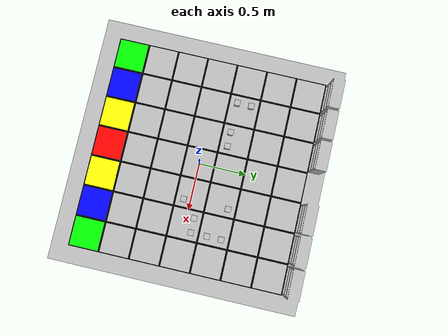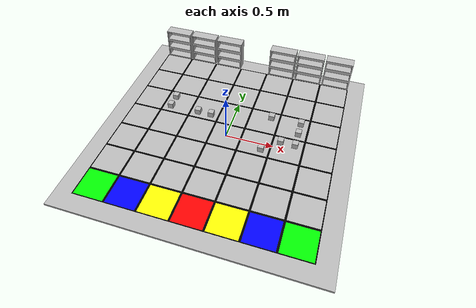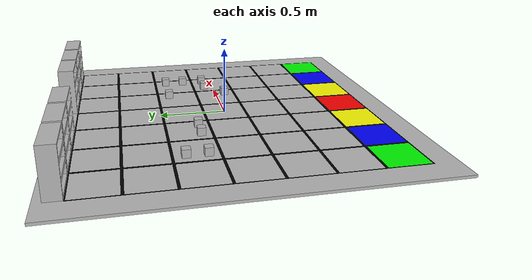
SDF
<sdf version="1.4">
 <world name="default">
  <light name="sun" type="directional">
   <pose>0 0 10 0 -0 0</pose>
   <diffuse>0.8 0.8 0.8 1</diffuse>
   <specular>0.2 0.2 0.2 1</specular>
   <attenuation>
    <range>1000</range>
    <constant>0.9</constant>
    <linear>0.01</linear>
    <quadratic>0.001</quadratic>
   </attenuation>
   <direction>-0.5 0.1 -0.9</direction>
   <spot><inner_angle>0</inner_angle><outer_angle>0</outer_angle><falloff>0</falloff></spot>
  </light>
  <model name="arena">
   <static>1</static>
   <link name="body">
    <collision name="collision">
     <geometry>
      <mesh><uri>/home/jetson/open_workspace/src/urdf_package/models/arenaieee_collision.dae</uri></mesh>
     </geometry>
     <surface>
      <contact><collide_bitmask>65535</collide_bitmask></contact>
      <friction><ode><mu>100</mu><mu2>50</mu2></ode></friction>
     </surface>
    </collision>
    <visual name="visual">
     <geometry><mesh><uri>/home/jetson/open_workspace/src/urdf_package/models/arenaieee.dae</uri></mesh></geometry>
    </visual>
   </link>
  </model>
  <gravity>0 0 -9.8</gravity>
  <magnetic_field>6e-06 2.3e-05 -4.2e-05</magnetic_field>
  <atmosphere type="adiabatic"/>
  <physics type="ode">
   <max_step_size>0.001</max_step_size>
   <real_time_factor>1</real_time_factor>
   <real_time_update_rate>1000</real_time_update_rate>
  </physics>
  <scene><ambient>0.4 0.4 0.4 1</ambient><background>0.7 0.7 0.7 1</background><shadows>1</shadows></scene>
  <model name="cube20">
   <pose>-0.713 0.394 0.03 0 0 0</pose>
   <link name="cube20">
    <inertial>
     <mass>0.06</mass>
     <inertia>
      <ixx>0.000036</ixx>
      <ixy>0</ixy>
      <ixz>0</ixz>
      <iyy>0.000036</iyy>
      <iyz>0</iyz>
      <izz>0.000036</izz>
     </inertia>
    </inertial>
    <collision name="collision">
     <geometry><mesh><uri>/home/jetson/open_workspace/src/urdf_package/models/Cubo_20.dae</uri></mesh></geometry>
    </collision>
    <visual name="visual">
     <geometry><mesh><uri>//home/jetson/open_workspace/src/urdf_package/models/Cubo_20.dae</uri></mesh></geometry>
    </visual>
   </link>
  </model>
  <model name="cube15">
   <pose>0.394 0.394 0.03 0 0 0</pose>
   <link name="cube15">
    <inertial>
     <mass>0.06</mass>
     <inertia>
      <ixx>0.000036</ixx>
      <ixy>0</ixy>
      <ixz>0</ixz>
      <iyy>0.000036</iyy>
      <iyz>0</iyz>
      <izz>0.000036</izz>
     </inertia>
    </inertial>
    <collision name="collision">
     <geometry><mesh><uri>/home/jetson/open_workspace/src/urdf_package/models/Cubo_15.dae</uri></mesh></geometry>
    </collision>
    <visual name="visual">
     <geometry><mesh><uri>//home/jetson/open_workspace/src/urdf_package/models/Cubo_15.dae</uri></mesh></geometry>
    </visual>
   </link>
  </model>
  <model name="cube23">
   <pose>0.713 0.394 0.03 0 0 0</pose>
   <link name="cube23">
    <inertial>
     <mass>0.06</mass>
     <inertia>
      <ixx>0.000036</ixx>
      <ixy>0</ixy>
      <ixz>0</ixz>
      <iyy>0.000036</iyy>
      <iyz>0</iyz>
      <izz>0.000036</izz>
     </inertia>
    </inertial>
    <collision name="collision">
     <geometry><mesh><uri>/home/jetson/open_workspace/src/urdf_package/models/Cubo_23.dae</uri></mesh></geometry>
    </collision>
    <visual name="visual">
     <geometry><mesh><uri>//home/jetson/open_workspace/src/urdf_package/models/Cubo_23.dae</uri></mesh></geometry>
    </visual>
   </link>
  </model>
  <model name="cube19">
   <pose>0.713 0.075 0.03 0 0 0</pose>
   <link name="cube19">
    <inertial>
     <mass>0.06</mass>
     <inertia>
      <ixx>0.000036</ixx>
      <ixy>0</ixy>
      <ixz>0</ixz>
      <iyy>0.000036</iyy>
      <iyz>0</iyz>
      <izz>0.000036</izz>
     </inertia>
    </inertial>
    <collision name="collision">
     <geometry><mesh><uri>/home/jetson/open_workspace/src/urdf_package/models/Cubo_19.dae</uri></mesh></geometry>
    </collision>
    <visual name="visual">
     <geometry><mesh><uri>//home/jetson/open_workspace/src/urdf_package/models/Cubo_19.dae</uri></mesh></geometry>
    </visual>
   </link>
  </model>
  <model name="cube28">
   <pose>-0.244 0.244 0.03 0 0 0</pose>
   <link name="cube28">
    <inertial>
     <mass>0.06</mass>
     <inertia>
      <ixx>0.000036</ixx>
      <ixy>0</ixy>
      <ixz>0</ixz>
      <iyy>0.000036</iyy>
      <iyz>0</iyz>
      <izz>0.000036</izz>
     </inertia>
    </inertial>
    <collision name="collision">
     <geometry><mesh><uri>/home/jetson/open_workspace/src/urdf_package/models/Cubo_28.dae</uri></mesh></geometry>
    </collision>
    <visual name="visual">
     <geometry><mesh><uri>//home/jetson/open_workspace/src/urdf_package/models/Cubo_28.dae</uri></mesh></geometry>
    </visual>
   </link>
  </model>
  <model name="cube16">
   <pose>-0.713 0.244 0.03 0 0 0</pose>
   <link name="cube16">
    <inertial>
     <mass>0.06</mass>
     <inertia>
      <ixx>0.000036</ixx>
      <ixy>0</ixy>
      <ixz>0</ixz>
      <iyy>0.000036</iyy>
      <iyz>0</iyz>
      <izz>0.000036</izz>
     </inertia>
    </inertial>
    <collision name="collision">
     <geometry><mesh><uri>/home/jetson/open_workspace/src/urdf_package/models/Cubo_16.dae</uri></mesh></geometry>
    </collision>
    <visual name="visual">
     <geometry><mesh><uri>//home/jetson/open_workspace/src/urdf_package/models/Cubo_16.dae</uri></mesh></geometry>
    </visual>
   </link>
  </model>
  <model name="cube1">
   <pose>0.713 0.244 0.03 0 0 0</pose>
   <link name="cube1">
    <inertial>
     <mass>0.06</mass>
     <inertia>
      <ixx>0.000036</ixx>
      <ixy>0</ixy>
      <ixz>0</ixz>
      <iyy>0.000036</iyy>
      <iyz>0</iyz>
      <izz>0.000036</izz>
     </inertia>
    </inertial>
    <collision name="collision">
     <geometry><mesh><uri>/home/jetson/open_workspace/src/urdf_package/models/Cubo_1.dae</uri></mesh></geometry>
    </collision>
    <visual name="visual">
     <geometry><mesh><uri>//home/jetson/open_workspace/src/urdf_package/models/Cubo_1.dae</uri></mesh></geometry>
    </visual>
   </link>
  </model>
  <model name="cube2">
   <pose>0.563 0.075 0.03 0 0 0</pose>
   <link name="cube2">
    <inertial>
     <mass>0.06</mass>
     <inertia>
      <ixx>0.000036</ixx>
      <ixy>0</ixy>
      <ixz>0</ixz>
      <iyy>0.000036</iyy>
      <iyz>0</iyz>
      <izz>0.000036</izz>
     </inertia>
    </inertial>
    <collision name="collision">
     <geometry><mesh><uri>/home/jetson/open_workspace/src/urdf_package/models/Cubo_2.dae</uri></mesh></geometry>
    </collision>
    <visual name="visual">
     <geometry><mesh><uri>//home/jetson/open_workspace/src/urdf_package/models/Cubo_2.dae</uri></mesh></geometry>
    </visual>
   </link>
  </model>
  <model name="cube21">
   <pose>-0.394 0.244 0.03 0 0 0</pose>
   <link name="cube21">
    <inertial>
     <mass>0.06</mass>
     <inertia>
      <ixx>0.000036</ixx>
      <ixy>0</ixy>
      <ixz>0</ixz>
      <iyy>0.000036</iyy>
      <iyz>0</iyz>
      <izz>0.000036</izz>
     </inertia>
    </inertial>
    <collision name="collision">
     <geometry><mesh><uri>/home/jetson/open_workspace/src/urdf_package/models/Cubo_21.dae</uri></mesh></geometry>
    </collision>
    <visual name="visual">
     <geometry><mesh><uri>//home/jetson/open_workspace/src/urdf_package/models/Cubo_21.dae</uri></mesh></geometry>
    </visual>
   </link>
  </model>
  <model name="cube14">
   <pose>0.394 -0.075 0.03 0 0 0</pose>
   <link name="cube14">
    <inertial>
     <mass>0.06</mass>
     <inertia>
      <ixx>0.000036</ixx>
      <ixy>0</ixy>
      <ixz>0</ixz>
      <iyy>0.000036</iyy>
      <iyz>0</iyz>
      <izz>0.000036</izz>
     </inertia>
    </inertial>
    <collision name="collision">
     <geometry><mesh><uri>/home/jetson/open_workspace/src/urdf_package/models/Cubo_14.dae</uri></mesh></geometry>
    </collision>
    <visual name="visual">
     <geometry><mesh><uri>//home/jetson/open_workspace/src/urdf_package/models/Cubo_14.dae</uri></mesh></geometry>
    </visual>
   </link>
  </model>
 </world>
</sdf>
